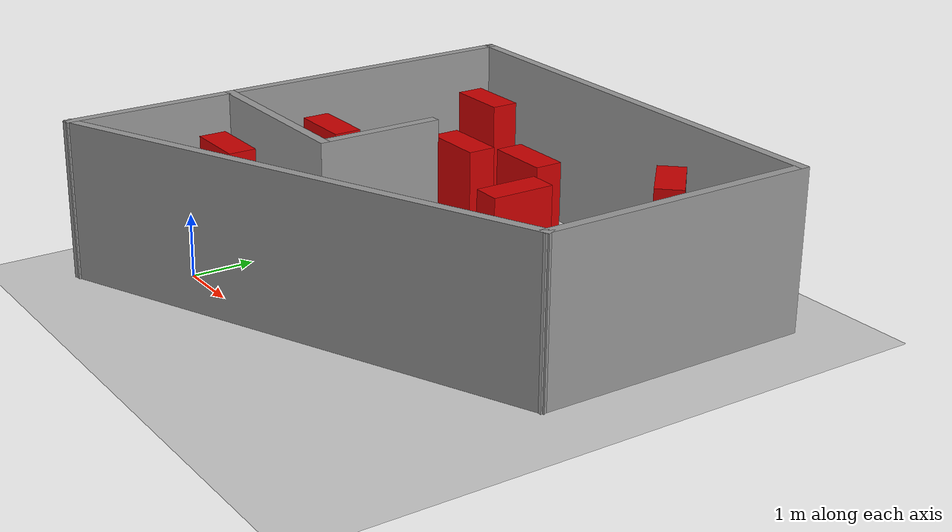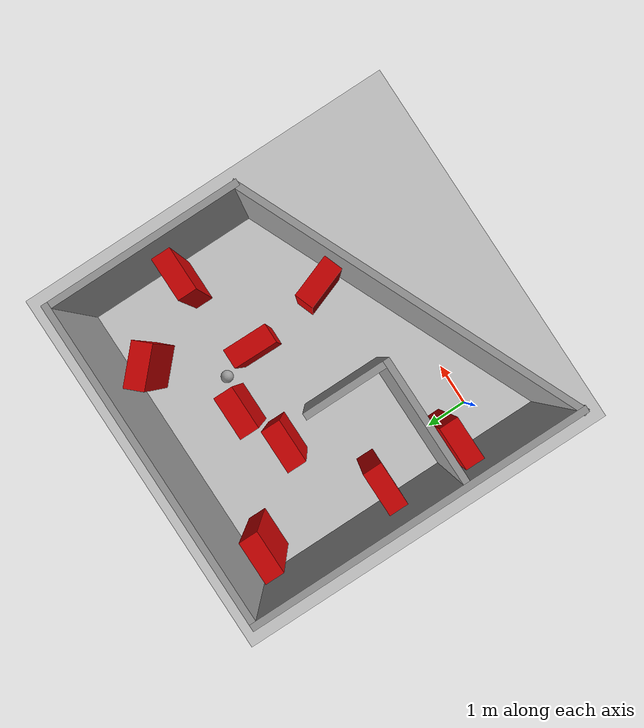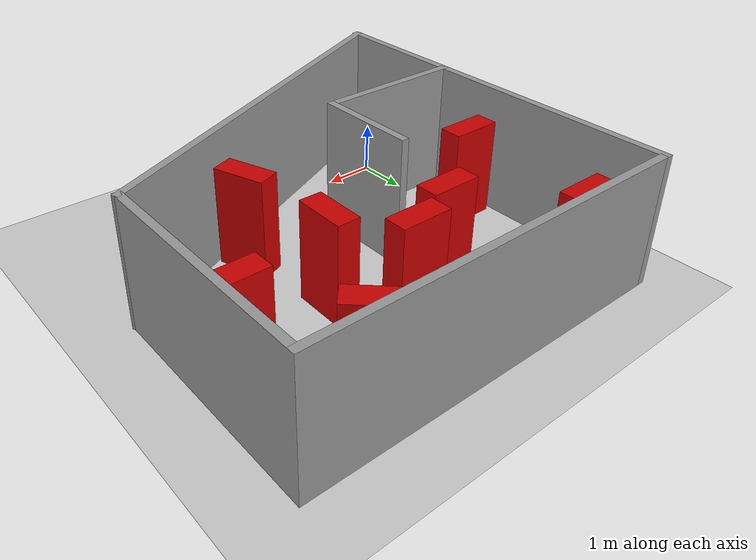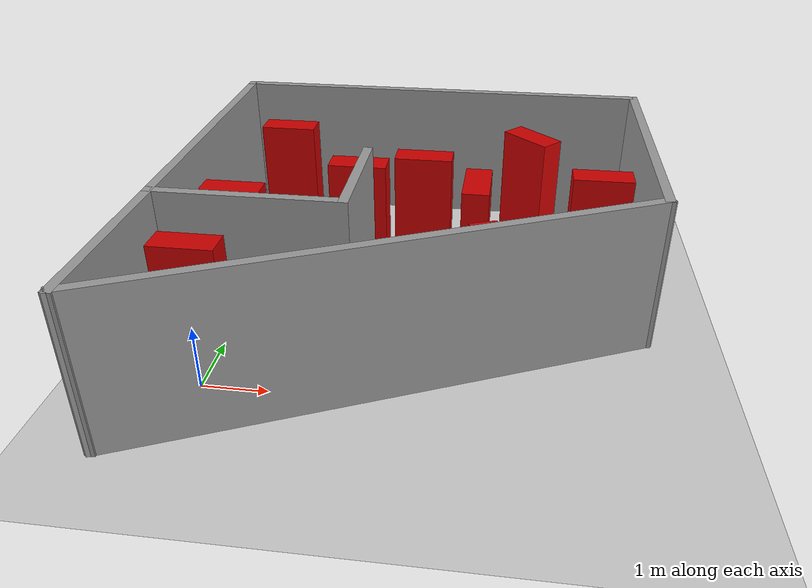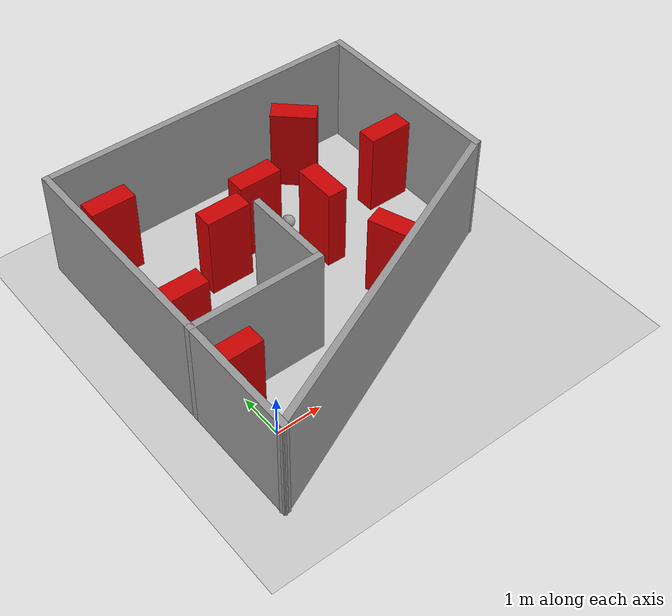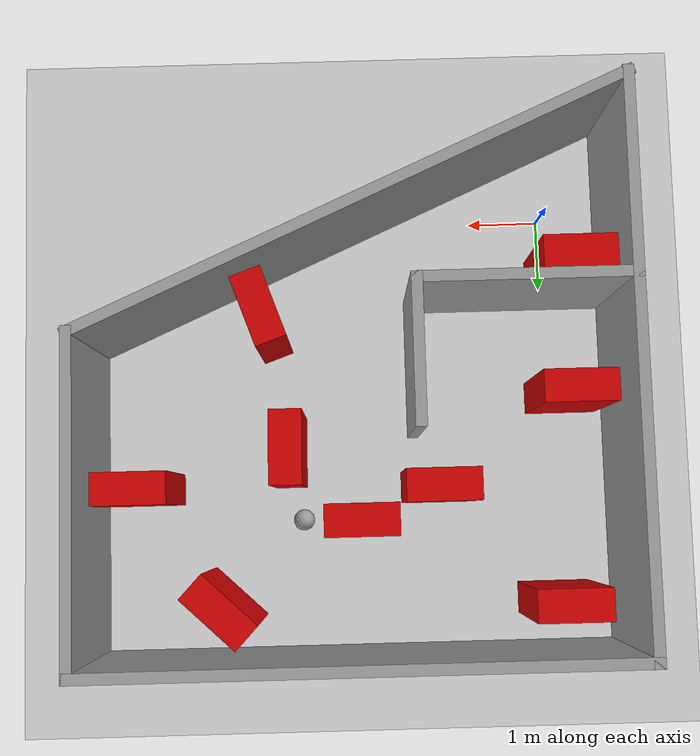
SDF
<sdf version="1.6">
 <world name="default">
  <light name="sun" type="directional">
   <pose>0 0 10 0 -0 0</pose>
   <diffuse>0.8 0.8 0.8 1</diffuse>
   <specular>0.2 0.2 0.2 1</specular>
   <attenuation>
    <range>1000</range>
    <constant>0.9</constant>
    <linear>0.01</linear>
    <quadratic>0.001</quadratic>
   </attenuation>
   <direction>-0.5 0.1 -0.9</direction>
  </light>
  <model name="ground_plane">
   <static>1</static>
   <link name="link">
    <collision name="collision">
     <geometry><plane><normal>0 0 1</normal><size>100 100</size></plane></geometry>
     <surface>
      <contact><collide_bitmask>65535</collide_bitmask></contact>
      <friction><ode><mu>100</mu><mu2>50</mu2></ode></friction>
     </surface>
    </collision>
    <visual name="visual">
     <cast_shadows>0</cast_shadows>
     <geometry><plane><normal>0 0 1</normal><size>100 100</size></plane></geometry>
     <material>
      <script><uri>file://media/materials/scripts/gazebo.material</uri><name>Gazebo/Grey</name></script>
     </material>
    </visual>
   </link>
  </model>
  <gravity>0 0 -9.8</gravity>
  <magnetic_field>6e-06 2.3e-05 -4.2e-05</magnetic_field>
  <atmosphere type="adiabatic"/>
  <physics name="default_physics" default="0" type="ode">
   <max_step_size>0.001</max_step_size>
   <real_time_factor>1</real_time_factor>
   <real_time_update_rate>1000</real_time_update_rate>
  </physics>
  <scene><ambient>0.4 0.4 0.4 1</ambient><background>0.7 0.7 0.7 1</background><shadows>1</shadows></scene>
  <audio><device>default</device></audio>
  <spherical_coordinates>
   <surface_model>EARTH_WGS84</surface_model>
   <latitude_deg>0</latitude_deg>
   <longitude_deg>0</longitude_deg>
   <elevation>0</elevation>
   <heading_deg>0</heading_deg>
  </spherical_coordinates>
  <model name="indoor_5">
   <pose>2.76096 2.34914 0 0 -0 0</pose>
   <link name="Wall_0">
    <collision name="Wall_0_Collision">
     <geometry><box><size>7.75 0.15 2.5</size></box></geometry>
     <pose>0 0 1.25 0 -0 0</pose>
    </collision>
    <visual name="Wall_0_Visual">
     <pose>0 0 1.25 0 -0 0</pose>
     <geometry><box><size>7.75 0.15 2.5</size></box></geometry>
     <material>
      <script><uri>file://media/materials/scripts/gazebo.material</uri><name>Gazebo/Grey</name></script>
      <ambient>1 1 1 1</ambient>
     </material>
     <meta><layer>0</layer></meta>
    </visual>
    <pose>-3.675 0.011962 0 0 -0 1.5708</pose>
   </link>
   <link name="Wall_1">
    <collision name="Wall_1_Collision">
     <geometry><box><size>7.5 0.15 2.5</size></box></geometry>
     <pose>0 0 1.25 0 -0 0</pose>
    </collision>
    <visual name="Wall_1_Visual">
     <pose>0 0 1.25 0 -0 0</pose>
     <geometry><box><size>7.5 0.15 2.5</size></box></geometry>
     <material>
      <script><uri>file://media/materials/scripts/gazebo.material</uri><name>Gazebo/Grey</name></script>
      <ambient>1 1 1 1</ambient>
     </material>
     <meta><layer>0</layer></meta>
    </visual>
    <pose>-0 3.81196 0 0 -0 0</pose>
   </link>
   <link name="Wall_4">
    <collision name="Wall_4_Collision">
     <geometry><box><size>4.5 0.15 2.5</size></box></geometry>
     <pose>0 0 1.25 0 -0 0</pose>
    </collision>
    <visual name="Wall_4_Visual">
     <pose>0 0 1.25 0 -0 0</pose>
     <geometry><box><size>4.5 0.15 2.5</size></box></geometry>
     <material>
      <script><uri>file://media/materials/scripts/gazebo.material</uri><name>Gazebo/Grey</name></script>
      <ambient>1 1 1 1</ambient>
     </material>
     <meta><layer>0</layer></meta>
    </visual>
    <pose>3.675 1.63696 0 0 -0 -1.5708</pose>
   </link>
   <link name="Wall_5">
    <collision name="Wall_5_Collision">
     <geometry><box><size>8.18648 0.15 2.5</size></box></geometry>
     <pose>0 0 1.25 0 -0 0</pose>
    </collision>
    <visual name="Wall_5_Visual">
     <pose>0 0 1.25 0 -0 0</pose>
     <geometry><box><size>8.18648 0.15 2.5</size></box></geometry>
     <material>
      <script><uri>file://media/materials/scripts/gazebo.material</uri><name>Gazebo/Grey</name></script>
      <ambient>1 1 1 1</ambient>
     </material>
     <meta><layer>0</layer></meta>
    </visual>
    <pose>-0 -2.16304 0 0 -0 -2.72526</pose>
   </link>
   <link name="Wall_7">
    <collision name="Wall_7_Collision">
     <geometry><box><size>3 0.15 2.5</size></box></geometry>
     <pose>0 0 1.25 0 -0 0</pose>
    </collision>
    <visual name="Wall_7_Visual">
     <pose>0 0 1.25 0 -0 0</pose>
     <geometry><box><size>3 0.15 2.5</size></box></geometry>
     <material>
      <script><uri>file://media/materials/scripts/gazebo.material</uri><name>Gazebo/Grey</name></script>
      <ambient>1 1 1 1</ambient>
     </material>
     <meta><layer>0</layer></meta>
    </visual>
    <pose>-2.25 -1.12802 0 0 -0 0</pose>
   </link>
   <link name="Wall_8">
    <collision name="Wall_8_Collision">
     <geometry><box><size>2 0.15 2.5</size></box></geometry>
     <pose>0 0 1.25 0 -0 0</pose>
    </collision>
    <visual name="Wall_8_Visual">
     <pose>0 0 1.25 0 -0 0</pose>
     <geometry><box><size>2 0.15 2.5</size></box></geometry>
     <material>
      <script><uri>file://media/materials/scripts/gazebo.material</uri><name>Gazebo/Grey</name></script>
      <ambient>1 1 1 1</ambient>
     </material>
     <meta><layer>0</layer></meta>
    </visual>
    <pose>-0.825 -0.203018 0 0 -0 1.5708</pose>
   </link>
   <static>1</static>
  </model>
  <model name="Sphere_radius_15cm">
   <link name="link">
    <inertial>
     <mass>1</mass>
     <inertia><ixx>0.1</ixx><ixy>0</ixy><ixz>0</ixz><iyy>0.1</iyy><iyz>0</iyz><izz>0.1</izz></inertia>
    </inertial>
    <visual name="visual">
     <geometry><sphere><radius>0.15</radius></sphere></geometry>
     <material>
      <script><name>Gazebo/Grey</name><uri>file://media/materials/scripts/gazebo.material</uri></script>
      <shader type="vertex"><normal_map>__default__</normal_map></shader>
      <ambient>0.3 0.3 0.3 1</ambient>
      <diffuse>0.7 0.7 0.7 1</diffuse>
      <specular>0.01 0.01 0.01 1</specular>
      <emissive>0 0 0 1</emissive>
     </material>
    </visual>
    <collision name="collision">
     <geometry><sphere><radius>0.15</radius></sphere></geometry>
     <surface>
      <friction>
       <ode><mu>1</mu><mu2>1</mu2><fdir1>0 0 0</fdir1><slip1>0</slip1><slip2>0</slip2></ode>
       <torsional>
        <coefficient>1</coefficient>
        <patch_radius>0</patch_radius>
        <surface_radius>0</surface_radius>
        <use_patch_radius>1</use_patch_radius>
        <ode><slip>0</slip></ode>
       </torsional>
      </friction>
      <bounce><restitution_coefficient>0</restitution_coefficient><threshold>1e+06</threshold></bounce>
      <contact>
       <collide_without_contact>0</collide_without_contact>
       <collide_without_contact_bitmask>1</collide_without_contact_bitmask>
       <collide_bitmask>1</collide_bitmask>
       <ode>
        <soft_cfm>0</soft_cfm>
        <soft_erp>0.2</soft_erp>
        <kp>1e+13</kp>
        <kd>1</kd>
        <max_vel>0.01</max_vel>
        <min_depth>0</min_depth>
       </ode>
       <bullet>
        <split_impulse>1</split_impulse>
        <split_impulse_penetration_threshold>-0.01</split_impulse_penetration_threshold>
        <soft_cfm>0</soft_cfm>
        <soft_erp>0.2</soft_erp>
        <kp>1e+13</kp>
        <kd>1</kd>
       </bullet>
      </contact>
     </surface>
    </collision>
   </link>
   <static>0</static>
   <pose>3.53568 4.29248 0.15 0 -0 0</pose>
  </model>
  <model name="bookshelf_0">
   <link name="link">
    <inertial>
     <mass>593.851</mass>
     <inertia><ixx>192.336</ixx><ixy>0</ixy><ixz>0</ixz><iyy>232.175</iyy><iyz>0</iyz><izz>59.1357</izz></inertia>
    </inertial>
    <visual name="visual">
     <geometry><box><size>1 0.441543 1.92135</size></box></geometry>
     <material>
      <script><name>Gazebo/Grey</name><uri>file://media/materials/scripts/gazebo.material</uri></script>
      <shader type="vertex"><normal_map>__default__</normal_map></shader>
      <ambient>0.937 0.161 0.161 1</ambient>
      <diffuse>0.8 0 0 1</diffuse>
      <specular>0.929 0.831 0 1</specular>
      <emissive>0 0 0 1</emissive>
     </material>
    </visual>
    <collision name="collision">
     <geometry><box><size>1 0.441543 1.92135</size></box></geometry>
     <surface>
      <friction>
       <ode><mu>1</mu><mu2>1</mu2><fdir1>0 0 0</fdir1><slip1>0</slip1><slip2>0</slip2></ode>
       <torsional>
        <coefficient>1</coefficient>
        <patch_radius>0</patch_radius>
        <surface_radius>0</surface_radius>
        <use_patch_radius>1</use_patch_radius>
        <ode><slip>0</slip></ode>
       </torsional>
      </friction>
      <bounce><restitution_coefficient>0</restitution_coefficient><threshold>1e+06</threshold></bounce>
      <contact>
       <collide_without_contact>0</collide_without_contact>
       <collide_without_contact_bitmask>1</collide_without_contact_bitmask>
       <collide_bitmask>1</collide_bitmask>
       <ode>
        <soft_cfm>0</soft_cfm>
        <soft_erp>0.2</soft_erp>
        <kp>1e+13</kp>
        <kd>1</kd>
        <max_vel>0.01</max_vel>
        <min_depth>0</min_depth>
       </ode>
       <bullet>
        <split_impulse>1</split_impulse>
        <split_impulse_penetration_threshold>-0.01</split_impulse_penetration_threshold>
        <soft_cfm>0</soft_cfm>
        <soft_erp>0.2</soft_erp>
        <kp>1e+13</kp>
        <kd>1</kd>
       </bullet>
      </contact>
     </surface>
    </collision>
   </link>
   <static>0</static>
   <pose>-0.015898 5.47801 0.960672 -1e-06 -3e-06 0.000189</pose>
  </model>
  <model name="bookshelf_0_clone">
   <link name="link">
    <inertial>
     <mass>593.851</mass>
     <inertia><ixx>192.336</ixx><ixy>0</ixy><ixz>0</ixz><iyy>232.175</iyy><iyz>0</iyz><izz>59.1357</izz></inertia>
    </inertial>
    <visual name="visual">
     <geometry><box><size>1 0.441543 1.92135</size></box></geometry>
     <material>
      <script><name>Gazebo/Grey</name><uri>file://media/materials/scripts/gazebo.material</uri></script>
      <shader type="vertex"><normal_map>__default__</normal_map></shader>
      <ambient>0.937 0.161 0.161 1</ambient>
      <diffuse>0.8 0 0 1</diffuse>
      <specular>0.929 0.831 0 1</specular>
      <emissive>0 0 0 1</emissive>
     </material>
    </visual>
    <collision name="collision">
     <geometry><box><size>1 0.441543 1.92135</size></box></geometry>
     <surface>
      <friction>
       <ode><mu>1</mu><mu2>1</mu2><fdir1>0 0 0</fdir1><slip1>0</slip1><slip2>0</slip2></ode>
       <torsional>
        <coefficient>1</coefficient>
        <patch_radius>0</patch_radius>
        <surface_radius>0</surface_radius>
        <use_patch_radius>1</use_patch_radius>
        <ode><slip>0</slip></ode>
       </torsional>
      </friction>
      <bounce><restitution_coefficient>0</restitution_coefficient><threshold>1e+06</threshold></bounce>
      <contact>
       <collide_without_contact>0</collide_without_contact>
       <collide_without_contact_bitmask>1</collide_without_contact_bitmask>
       <collide_bitmask>1</collide_bitmask>
       <ode>
        <soft_cfm>0</soft_cfm>
        <soft_erp>0.2</soft_erp>
        <kp>1e+13</kp>
        <kd>1</kd>
        <max_vel>0.01</max_vel>
        <min_depth>0</min_depth>
       </ode>
       <bullet>
        <split_impulse>1</split_impulse>
        <split_impulse_penetration_threshold>-0.01</split_impulse_penetration_threshold>
        <soft_cfm>0</soft_cfm>
        <soft_erp>0.2</soft_erp>
        <kp>1e+13</kp>
        <kd>1</kd>
       </bullet>
      </contact>
     </surface>
    </collision>
   </link>
   <static>0</static>
   <pose>-0.298992 0.812139 0.960672 -1e-06 -3e-06 0.000189</pose>
  </model>
  <model name="bookshelf_0_clone_0">
   <link name="link">
    <inertial>
     <mass>593.851</mass>
     <inertia><ixx>192.336</ixx><ixy>0</ixy><ixz>0</ixz><iyy>232.175</iyy><iyz>0</iyz><izz>59.1357</izz></inertia>
    </inertial>
    <visual name="visual">
     <geometry><box><size>1 0.441543 1.92135</size></box></geometry>
     <material>
      <script><name>Gazebo/Grey</name><uri>file://media/materials/scripts/gazebo.material</uri></script>
      <shader type="vertex"><normal_map>__default__</normal_map></shader>
      <ambient>0.937 0.161 0.161 1</ambient>
      <diffuse>0.8 0 0 1</diffuse>
      <specular>0.929 0.831 0 1</specular>
      <emissive>0 0 0 1</emissive>
     </material>
    </visual>
    <collision name="collision">
     <geometry><box><size>1 0.441543 1.92135</size></box></geometry>
     <surface>
      <friction>
       <ode><mu>1</mu><mu2>1</mu2><fdir1>0 0 0</fdir1><slip1>0</slip1><slip2>0</slip2></ode>
       <torsional>
        <coefficient>1</coefficient>
        <patch_radius>0</patch_radius>
        <surface_radius>0</surface_radius>
        <use_patch_radius>1</use_patch_radius>
        <ode><slip>0</slip></ode>
       </torsional>
      </friction>
      <bounce><restitution_coefficient>0</restitution_coefficient><threshold>1e+06</threshold></bounce>
      <contact>
       <collide_without_contact>0</collide_without_contact>
       <collide_without_contact_bitmask>1</collide_without_contact_bitmask>
       <collide_bitmask>1</collide_bitmask>
       <ode>
        <soft_cfm>0</soft_cfm>
        <soft_erp>0.2</soft_erp>
        <kp>1e+13</kp>
        <kd>1</kd>
        <max_vel>0.01</max_vel>
        <min_depth>0</min_depth>
       </ode>
       <bullet>
        <split_impulse>1</split_impulse>
        <split_impulse_penetration_threshold>-0.01</split_impulse_penetration_threshold>
        <soft_cfm>0</soft_cfm>
        <soft_erp>0.2</soft_erp>
        <kp>1e+13</kp>
        <kd>1</kd>
       </bullet>
      </contact>
     </surface>
    </collision>
   </link>
   <static>0</static>
   <pose>4.0273 1.4497 0.960672 -2e-06 2e-06 1.91611</pose>
  </model>
  <model name="bookshelf_0_clone_1">
   <link name="link">
    <inertial>
     <mass>593.851</mass>
     <inertia><ixx>192.336</ixx><ixy>0</ixy><ixz>0</ixz><iyy>232.175</iyy><iyz>0</iyz><izz>59.1357</izz></inertia>
    </inertial>
    <visual name="visual">
     <geometry><box><size>1 0.441543 1.92135</size></box></geometry>
     <material>
      <script><name>Gazebo/Grey</name><uri>file://media/materials/scripts/gazebo.material</uri></script>
      <shader type="vertex"><normal_map>__default__</normal_map></shader>
      <ambient>0.937 0.161 0.161 1</ambient>
      <diffuse>0.8 0 0 1</diffuse>
      <specular>0.929 0.831 0 1</specular>
      <emissive>0 0 0 1</emissive>
     </material>
    </visual>
    <collision name="collision">
     <geometry><box><size>1 0.441543 1.92135</size></box></geometry>
     <surface>
      <friction>
       <ode><mu>1</mu><mu2>1</mu2><fdir1>0 0 0</fdir1><slip1>0</slip1><slip2>0</slip2></ode>
       <torsional>
        <coefficient>1</coefficient>
        <patch_radius>0</patch_radius>
        <surface_radius>0</surface_radius>
        <use_patch_radius>1</use_patch_radius>
        <ode><slip>0</slip></ode>
       </torsional>
      </friction>
      <bounce><restitution_coefficient>0</restitution_coefficient><threshold>1e+06</threshold></bounce>
      <contact>
       <collide_without_contact>0</collide_without_contact>
       <collide_without_contact_bitmask>1</collide_without_contact_bitmask>
       <collide_bitmask>1</collide_bitmask>
       <ode>
        <soft_cfm>0</soft_cfm>
        <soft_erp>0.2</soft_erp>
        <kp>1e+13</kp>
        <kd>1</kd>
        <max_vel>0.01</max_vel>
        <min_depth>0</min_depth>
       </ode>
       <bullet>
        <split_impulse>1</split_impulse>
        <split_impulse_penetration_threshold>-0.01</split_impulse_penetration_threshold>
        <soft_cfm>0</soft_cfm>
        <soft_erp>0.2</soft_erp>
        <kp>1e+13</kp>
        <kd>1</kd>
       </bullet>
      </contact>
     </surface>
    </collision>
   </link>
   <static>0</static>
   <pose>5.7665 3.81475 0.960672 -1e-06 -3e-06 0.000189</pose>
  </model>
  <model name="bookshelf_0_clone_2">
   <link name="link">
    <inertial>
     <mass>593.851</mass>
     <inertia><ixx>192.336</ixx><ixy>0</ixy><ixz>0</ixz><iyy>232.175</iyy><iyz>0</iyz><izz>59.1357</izz></inertia>
    </inertial>
    <visual name="visual">
     <geometry><box><size>1 0.441543 1.92135</size></box></geometry>
     <material>
      <script><name>Gazebo/Grey</name><uri>file://media/materials/scripts/gazebo.material</uri></script>
      <shader type="vertex"><normal_map>__default__</normal_map></shader>
      <ambient>0.937 0.161 0.161 1</ambient>
      <diffuse>0.8 0 0 1</diffuse>
      <specular>0.929 0.831 0 1</specular>
      <emissive>0 0 0 1</emissive>
     </material>
    </visual>
    <collision name="collision">
     <geometry><box><size>1 0.441543 1.92135</size></box></geometry>
     <surface>
      <friction>
       <ode><mu>1</mu><mu2>1</mu2><fdir1>0 0 0</fdir1><slip1>0</slip1><slip2>0</slip2></ode>
       <torsional>
        <coefficient>1</coefficient>
        <patch_radius>0</patch_radius>
        <surface_radius>0</surface_radius>
        <use_patch_radius>1</use_patch_radius>
        <ode><slip>0</slip></ode>
       </torsional>
      </friction>
      <bounce><restitution_coefficient>0</restitution_coefficient><threshold>1e+06</threshold></bounce>
      <contact>
       <collide_without_contact>0</collide_without_contact>
       <collide_without_contact_bitmask>1</collide_without_contact_bitmask>
       <collide_bitmask>1</collide_bitmask>
       <ode>
        <soft_cfm>0</soft_cfm>
        <soft_erp>0.2</soft_erp>
        <kp>1e+13</kp>
        <kd>1</kd>
        <max_vel>0.01</max_vel>
        <min_depth>0</min_depth>
       </ode>
       <bullet>
        <split_impulse>1</split_impulse>
        <split_impulse_penetration_threshold>-0.01</split_impulse_penetration_threshold>
        <soft_cfm>0</soft_cfm>
        <soft_erp>0.2</soft_erp>
        <kp>1e+13</kp>
        <kd>1</kd>
       </bullet>
      </contact>
     </surface>
    </collision>
   </link>
   <static>0</static>
   <pose>2.71624 4.30303 0.960672 -1e-06 -3e-06 0.000189</pose>
  </model>
  <model name="bookshelf_0_clone_3">
   <link name="link">
    <inertial>
     <mass>593.851</mass>
     <inertia><ixx>192.336</ixx><ixy>0</ixy><ixz>0</ixz><iyy>232.175</iyy><iyz>0</iyz><izz>59.1357</izz></inertia>
    </inertial>
    <visual name="visual">
     <geometry><box><size>1 0.441543 1.92135</size></box></geometry>
     <material>
      <script><name>Gazebo/Grey</name><uri>file://media/materials/scripts/gazebo.material</uri></script>
      <shader type="vertex"><normal_map>__default__</normal_map></shader>
      <ambient>0.937 0.161 0.161 1</ambient>
      <diffuse>0.8 0 0 1</diffuse>
      <specular>0.929 0.831 0 1</specular>
      <emissive>0 0 0 1</emissive>
     </material>
    </visual>
    <collision name="collision">
     <geometry><box><size>1 0.441543 1.92135</size></box></geometry>
     <surface>
      <friction>
       <ode><mu>1</mu><mu2>1</mu2><fdir1>0 0 0</fdir1><slip1>0</slip1><slip2>0</slip2></ode>
       <torsional>
        <coefficient>1</coefficient>
        <patch_radius>0</patch_radius>
        <surface_radius>0</surface_radius>
        <use_patch_radius>1</use_patch_radius>
        <ode><slip>0</slip></ode>
       </torsional>
      </friction>
      <bounce><restitution_coefficient>0</restitution_coefficient><threshold>1e+06</threshold></bounce>
      <contact>
       <collide_without_contact>0</collide_without_contact>
       <collide_without_contact_bitmask>1</collide_without_contact_bitmask>
       <collide_bitmask>1</collide_bitmask>
       <ode>
        <soft_cfm>0</soft_cfm>
        <soft_erp>0.2</soft_erp>
        <kp>1e+13</kp>
        <kd>1</kd>
        <max_vel>0.01</max_vel>
        <min_depth>0</min_depth>
       </ode>
       <bullet>
        <split_impulse>1</split_impulse>
        <split_impulse_penetration_threshold>-0.01</split_impulse_penetration_threshold>
        <soft_cfm>0</soft_cfm>
        <soft_erp>0.2</soft_erp>
        <kp>1e+13</kp>
        <kd>1</kd>
       </bullet>
      </contact>
     </surface>
    </collision>
   </link>
   <static>0</static>
   <pose>-0.22752 2.61422 0.960672 -1e-06 -3e-06 0.000189</pose>
  </model>
  <model name="bookshelf_0_clone_4">
   <link name="link">
    <inertial>
     <mass>593.851</mass>
     <inertia><ixx>192.336</ixx><ixy>0</ixy><ixz>0</ixz><iyy>232.175</iyy><iyz>0</iyz><izz>59.1357</izz></inertia>
    </inertial>
    <visual name="visual">
     <geometry><box><size>1 0.441543 1.92135</size></box></geometry>
     <material>
      <script><name>Gazebo/Grey</name><uri>file://media/materials/scripts/gazebo.material</uri></script>
      <shader type="vertex"><normal_map>__default__</normal_map></shader>
      <ambient>0.937 0.161 0.161 1</ambient>
      <diffuse>0.8 0 0 1</diffuse>
      <specular>0.929 0.831 0 1</specular>
      <emissive>0 0 0 1</emissive>
     </material>
    </visual>
    <collision name="collision">
     <geometry><box><size>1 0.441543 1.92135</size></box></geometry>
     <surface>
      <friction>
       <ode><mu>1</mu><mu2>1</mu2><fdir1>0 0 0</fdir1><slip1>0</slip1><slip2>0</slip2></ode>
       <torsional>
        <coefficient>1</coefficient>
        <patch_radius>0</patch_radius>
        <surface_radius>0</surface_radius>
        <use_patch_radius>1</use_patch_radius>
        <ode><slip>0</slip></ode>
       </torsional>
      </friction>
      <bounce><restitution_coefficient>0</restitution_coefficient><threshold>1e+06</threshold></bounce>
      <contact>
       <collide_without_contact>0</collide_without_contact>
       <collide_without_contact_bitmask>1</collide_without_contact_bitmask>
       <collide_bitmask>1</collide_bitmask>
       <ode>
        <soft_cfm>0</soft_cfm>
        <soft_erp>0.2</soft_erp>
        <kp>1e+13</kp>
        <kd>1</kd>
        <max_vel>0.01</max_vel>
        <min_depth>0</min_depth>
       </ode>
       <bullet>
        <split_impulse>1</split_impulse>
        <split_impulse_penetration_threshold>-0.01</split_impulse_penetration_threshold>
        <soft_cfm>0</soft_cfm>
        <soft_erp>0.2</soft_erp>
        <kp>1e+13</kp>
        <kd>1</kd>
       </bullet>
      </contact>
     </surface>
    </collision>
   </link>
   <static>0</static>
   <pose>1.62495 3.86811 0.960672 -1e-06 -3e-06 0.000189</pose>
  </model>
  <model name="bookshelf_0_clone_0_clone">
   <link name="link">
    <inertial>
     <mass>593.851</mass>
     <inertia><ixx>192.336</ixx><ixy>0</ixy><ixz>0</ixz><iyy>232.175</iyy><iyz>0</iyz><izz>59.1357</izz></inertia>
    </inertial>
    <visual name="visual">
     <geometry><box><size>1 0.441543 1.92135</size></box></geometry>
     <material>
      <script><name>Gazebo/Grey</name><uri>file://media/materials/scripts/gazebo.material</uri></script>
      <shader type="vertex"><normal_map>__default__</normal_map></shader>
      <ambient>0.937 0.161 0.161 1</ambient>
      <diffuse>0.8 0 0 1</diffuse>
      <specular>0.929 0.831 0 1</specular>
      <emissive>0 0 0 1</emissive>
     </material>
    </visual>
    <collision name="collision">
     <geometry><box><size>1 0.441543 1.92135</size></box></geometry>
     <surface>
      <friction>
       <ode><mu>1</mu><mu2>1</mu2><fdir1>0 0 0</fdir1><slip1>0</slip1><slip2>0</slip2></ode>
       <torsional>
        <coefficient>1</coefficient>
        <patch_radius>0</patch_radius>
        <surface_radius>0</surface_radius>
        <use_patch_radius>1</use_patch_radius>
        <ode><slip>0</slip></ode>
       </torsional>
      </friction>
      <bounce><restitution_coefficient>0</restitution_coefficient><threshold>1e+06</threshold></bounce>
      <contact>
       <collide_without_contact>0</collide_without_contact>
       <collide_without_contact_bitmask>1</collide_without_contact_bitmask>
       <collide_bitmask>1</collide_bitmask>
       <ode>
        <soft_cfm>0</soft_cfm>
        <soft_erp>0.2</soft_erp>
        <kp>1e+13</kp>
        <kd>1</kd>
        <max_vel>0.01</max_vel>
        <min_depth>0</min_depth>
       </ode>
       <bullet>
        <split_impulse>1</split_impulse>
        <split_impulse_penetration_threshold>-0.01</split_impulse_penetration_threshold>
        <soft_cfm>0</soft_cfm>
        <soft_erp>0.2</soft_erp>
        <kp>1e+13</kp>
        <kd>1</kd>
       </bullet>
      </contact>
     </surface>
    </collision>
   </link>
   <static>0</static>
   <pose>3.70229 3.3255 0.960672 -3e-06 1e-06 1.55922</pose>
  </model>
  <model name="bookshelf_0_clone_1_clone">
   <link name="link">
    <inertial>
     <mass>593.851</mass>
     <inertia><ixx>192.336</ixx><ixy>0</ixy><ixz>0</ixz><iyy>232.175</iyy><iyz>0</iyz><izz>59.1357</izz></inertia>
    </inertial>
    <visual name="visual">
     <geometry><box><size>1 0.441543 1.92135</size></box></geometry>
     <material>
      <script><name>Gazebo/Grey</name><uri>file://media/materials/scripts/gazebo.material</uri></script>
      <shader type="vertex"><normal_map>__default__</normal_map></shader>
      <ambient>0.937 0.161 0.161 1</ambient>
      <diffuse>0.8 0 0 1</diffuse>
      <specular>0.929 0.831 0 1</specular>
      <emissive>0 0 0 1</emissive>
     </material>
    </visual>
    <collision name="collision">
     <geometry><box><size>1 0.441543 1.92135</size></box></geometry>
     <surface>
      <friction>
       <ode><mu>1</mu><mu2>1</mu2><fdir1>0 0 0</fdir1><slip1>0</slip1><slip2>0</slip2></ode>
       <torsional>
        <coefficient>1</coefficient>
        <patch_radius>0</patch_radius>
        <surface_radius>0</surface_radius>
        <use_patch_radius>1</use_patch_radius>
        <ode><slip>0</slip></ode>
       </torsional>
      </friction>
      <bounce><restitution_coefficient>0</restitution_coefficient><threshold>1e+06</threshold></bounce>
      <contact>
       <collide_without_contact>0</collide_without_contact>
       <collide_without_contact_bitmask>1</collide_without_contact_bitmask>
       <collide_bitmask>1</collide_bitmask>
       <ode>
        <soft_cfm>0</soft_cfm>
        <soft_erp>0.2</soft_erp>
        <kp>1e+13</kp>
        <kd>1</kd>
        <max_vel>0.01</max_vel>
        <min_depth>0</min_depth>
       </ode>
       <bullet>
        <split_impulse>1</split_impulse>
        <split_impulse_penetration_threshold>-0.01</split_impulse_penetration_threshold>
        <soft_cfm>0</soft_cfm>
        <soft_erp>0.2</soft_erp>
        <kp>1e+13</kp>
        <kd>1</kd>
       </bullet>
      </contact>
     </surface>
    </collision>
   </link>
   <static>0</static>
   <pose>4.60747 5.44413 0.960672 1e-06 -3e-06 -0.751526</pose>
  </model>
 </world>
</sdf>
